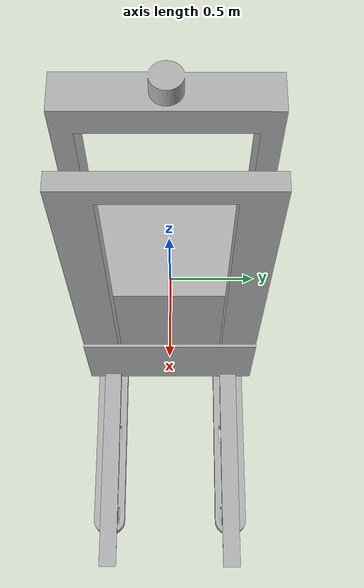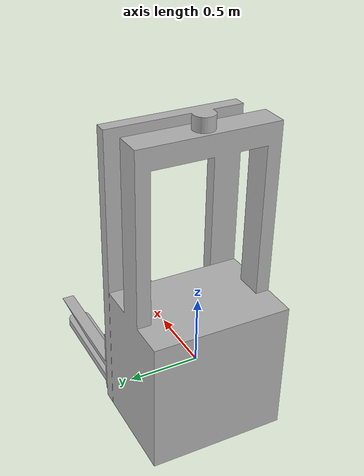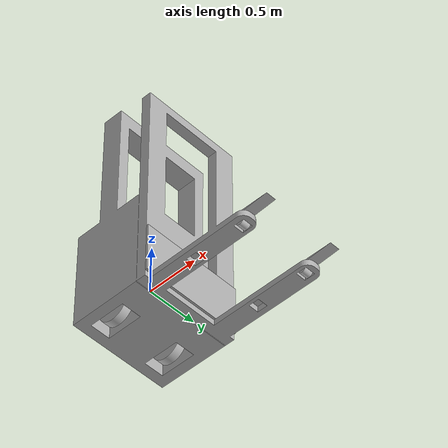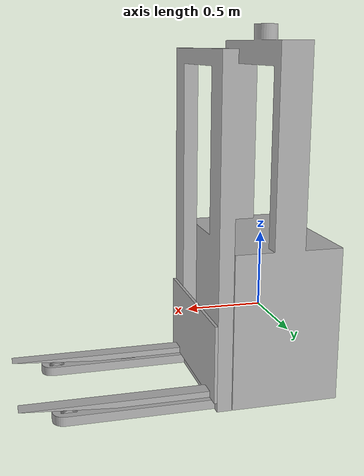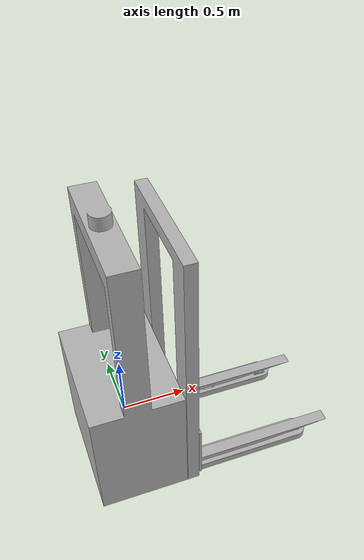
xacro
<?xml version="1.0" ?>
<robot name="Forkkun" xmlns:xacro="http://www.ros.org/wiki/xacro">

<xacro:include filename="$(find forkkun_description)/urdf/materials.xacro" />
<xacro:include filename="$(find forkkun_description)/urdf/Forkkun.trans" />
<xacro:include filename="$(find forkkun_description)/urdf/Forkkun.gazebo" />
<xacro:include filename="$(find forkkun_description)/urdf/Forkkun.ros2_control.xacro" />
<link name="base_link">
  <inertial>
    <origin xyz="0.07409839467536097 4.4381587475188695e-17 0.1936530825840086" rpy="0 0 0"/>
    <mass value="6589.112852097612"/>
    <inertia ixx="2595.179078" iyy="2407.750354" izz="1088.133581" ixy="-0.0" iyz="0.0" ixz="-4.918202"/>
  </inertial>
  <visual>
    <origin xyz="0 0 0" rpy="0 0 0"/>
    <geometry>
      <mesh filename="file://$(find forkkun_description)/meshes/base_link.stl" scale="0.001 0.001 0.001"/>
    </geometry>
    <material name="silver"/>
  </visual>
  <collision>
    <origin xyz="0 0 0" rpy="0 0 0"/>
    <geometry>
      <mesh filename="file://$(find forkkun_description)/meshes/base_link.stl" scale="0.001 0.001 0.001"/>
    </geometry>
  </collision>
</link>

<link name="right_wheel_1">
  <inertial>
    <origin xyz="-1.249000902703301e-16 -5.551115123125783e-17 -2.220446049250313e-16" rpy="0 0 0"/>
    <mass value="44.39070419522376"/>
    <inertia ixx="0.273373" iyy="0.499395" izz="0.273373" ixy="0.0" iyz="-0.0" ixz="0.0"/>
  </inertial>
  <visual>
    <origin xyz="0.075 0.3 0.36" rpy="0 0 0"/>
    <geometry>
      <mesh filename="file://$(find forkkun_description)/meshes/right_wheel_1.stl" scale="0.001 0.001 0.001"/>
    </geometry>
    <material name="silver"/>
  </visual>
  <collision>
    <origin xyz="0.075 0.3 0.36" rpy="0 0 0"/>
    <geometry>
      <mesh filename="file://$(find forkkun_description)/meshes/right_wheel_1.stl" scale="0.001 0.001 0.001"/>
    </geometry>
  </collision>
</link>

<link name="left_wheel_1">
  <inertial>
    <origin xyz="2.7755575615628914e-17 -1.1102230246251565e-16 -2.220446049250313e-16" rpy="0 0 0"/>
    <mass value="44.39070419522377"/>
    <inertia ixx="0.273373" iyy="0.499395" izz="0.273373" ixy="-0.0" iyz="0.0" ixz="-0.0"/>
  </inertial>
  <visual>
    <origin xyz="0.075 -0.3 0.36" rpy="0 0 0"/>
    <geometry>
      <mesh filename="file://$(find forkkun_description)/meshes/left_wheel_1.stl" scale="0.001 0.001 0.001"/>
    </geometry>
    <material name="silver"/>
  </visual>
  <collision>
    <origin xyz="0.075 -0.3 0.36" rpy="0 0 0"/>
    <geometry>
      <mesh filename="file://$(find forkkun_description)/meshes/left_wheel_1.stl" scale="0.001 0.001 0.001"/>
    </geometry>
  </collision>
</link>

<link name="right_castor_1">
  <inertial>
    <origin xyz="6.661338147750939e-16 -1.6653345369377348e-16 -4.440892098500626e-16" rpy="0 0 0"/>
    <mass value="3.156672298327024"/>
    <inertia ixx="0.002946" iyy="0.002525" izz="0.002946" ixy="0.0" iyz="0.0" ixz="0.0"/>
  </inertial>
  <visual>
    <origin xyz="-1.35 0.35 0.47" rpy="0 0 0"/>
    <geometry>
      <mesh filename="file://$(find forkkun_description)/meshes/right_castor_1.stl" scale="0.001 0.001 0.001"/>
    </geometry>
    <material name="silver"/>
  </visual>
  <collision>
    <origin xyz="-1.35 0.35 0.47" rpy="0 0 0"/>
    <geometry>
      <mesh filename="file://$(find forkkun_description)/meshes/right_castor_1.stl" scale="0.001 0.001 0.001"/>
    </geometry>
  </collision>
</link>

<link name="left_castor_1">
  <inertial>
    <origin xyz="0.0 2.220446049250313e-16 -1.1102230246251565e-16" rpy="0 0 0"/>
    <mass value="3.156672298327024"/>
    <inertia ixx="0.002946" iyy="0.002525" izz="0.002946" ixy="0.0" iyz="-0.0" ixz="-0.0"/>
  </inertial>
  <visual>
    <origin xyz="-1.35 -0.35 0.47" rpy="0 0 0"/>
    <geometry>
      <mesh filename="file://$(find forkkun_description)/meshes/left_castor_1.stl" scale="0.001 0.001 0.001"/>
    </geometry>
    <material name="silver"/>
  </visual>
  <collision>
    <origin xyz="-1.35 -0.35 0.47" rpy="0 0 0"/>
    <geometry>
      <mesh filename="file://$(find forkkun_description)/meshes/left_castor_1.stl" scale="0.001 0.001 0.001"/>
    </geometry>
  </collision>
</link>

<link name="carriage_1">
  <inertial>
    <origin xyz="0.20436377829820446 0.0 0.1555815768930523" rpy="0 0 0"/>
    <mass value="134.07799999999997"/>
    <inertia ixx="17.121697" iyy="14.906213" izz="25.366297" ixy="0.0" iyz="-0.0" ixz="3.422705"/>
  </inertial>
  <visual>
    <origin xyz="-0.45 -0.0 0.44" rpy="0 0 0"/>
    <geometry>
      <mesh filename="file://$(find forkkun_description)/meshes/carriage_1.stl" scale="0.001 0.001 0.001"/>
    </geometry>
    <material name="silver"/>
  </visual>
  <collision>
    <origin xyz="-0.45 -0.0 0.44" rpy="0 0 0"/>
    <geometry>
      <mesh filename="file://$(find forkkun_description)/meshes/carriage_1.stl" scale="0.001 0.001 0.001"/>
    </geometry>
  </collision>
</link>

<joint name="right_drive" type="continuous">
  <origin xyz="-0.075 -0.3 -0.36" rpy="0 0 0"/>
  <parent link="base_link"/>
  <child link="right_wheel_1"/>
  <axis xyz="0.0 1.0 0.0"/>
</joint>

<joint name="left_drive" type="continuous">
  <origin xyz="-0.075 0.3 -0.36" rpy="0 0 0"/>
  <parent link="base_link"/>
  <child link="left_wheel_1"/>
  <axis xyz="0.0 1.0 0.0"/>
</joint>

<joint name="right_castor" type="continuous">
  <origin xyz="1.35 -0.35 -0.47" rpy="0 0 0"/>
  <parent link="base_link"/>
  <child link="right_castor_1"/>
  <axis xyz="0.0 -1.0 0.0"/>
</joint>

<joint name="left_castor" type="continuous">
  <origin xyz="1.35 0.35 -0.47" rpy="0 0 0"/>
  <parent link="base_link"/>
  <child link="left_castor_1"/>
  <axis xyz="0.0 -1.0 0.0"/>
</joint>

<joint name="carriage" type="prismatic">
  <origin xyz="0.45 0.0 -0.44" rpy="0 0 0"/>
  <parent link="base_link"/>
  <child link="carriage_1"/>
  <axis xyz="0.0 0.0 1.0"/>
  <limit upper="1.6" lower="0.0" effort="100" velocity="100"/>
</joint>

</robot>

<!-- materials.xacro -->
<robot name="Forkkun" xmlns:xacro="http://www.ros.org/wiki/xacro" >

<material name="silver">
  <color rgba="0.700 0.700 0.700 1.000"/>
</material>

</robot>

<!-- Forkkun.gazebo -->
<robot name="Forkkun" xmlns:xacro="http://www.ros.org/wiki/xacro" >

<xacro:property name="body_color" value="Gazebo/Silver" />

<gazebo reference="base_link">
  <material>${body_color}</material>
  <mu1>0.2</mu1>
  <mu2>0.2</mu2>
  <self_collide>true</self_collide>
  <gravity>true</gravity>
</gazebo>

<gazebo reference="right_wheel_1">
  <material>${body_color}</material>
  <mu1>0.2</mu1>
  <mu2>0.2</mu2>
  <self_collide>true</self_collide>
</gazebo>

<gazebo reference="left_wheel_1">
  <material>${body_color}</material>
  <mu1>0.2</mu1>
  <mu2>0.2</mu2>
  <self_collide>true</self_collide>
</gazebo>

<gazebo reference="right_castor_1">
  <material>${body_color}</material>
  <mu1>0.2</mu1>
  <mu2>0.2</mu2>
  <self_collide>true</self_collide>
</gazebo>

<gazebo reference="left_castor_1">
  <material>${body_color}</material>
  <mu1>0.2</mu1>
  <mu2>0.2</mu2>
  <self_collide>true</self_collide>
</gazebo>

<gazebo reference="carriage_1">
  <material>${body_color}</material>
  <mu1>0.2</mu1>
  <mu2>0.2</mu2>
  <self_collide>true</self_collide>
</gazebo>

<gazebo>
  <plugin
      filename="gz_ros2_control-system"
      name="gz_ros2_control::GazeboSimROS2ControlPlugin">

    <parameters>$(find forkkun_description)/config/controllers.yaml</parameters>

  </plugin>
</gazebo>

</robot>
